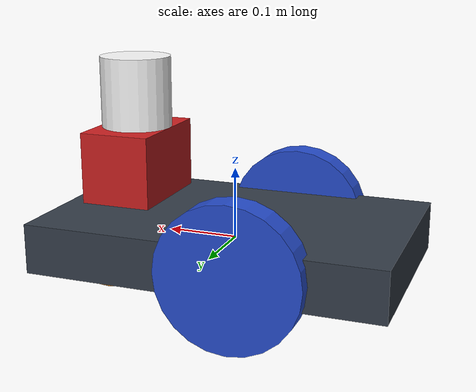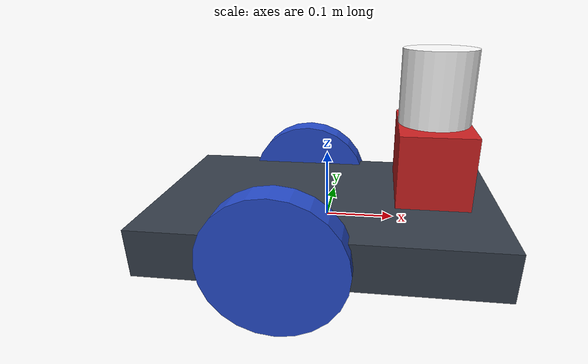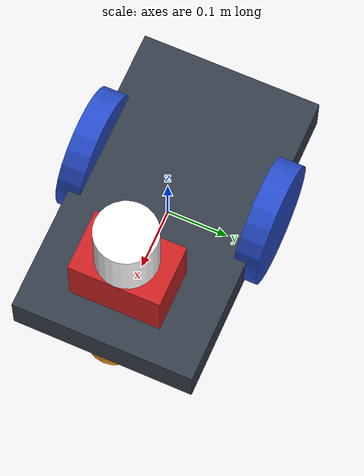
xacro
<?xml version="1.0" ?>

<robot name="my_robot" xmlns:xacro="http://www.ros.org/wiki/xacro">
  <xacro:include filename="$(find diff_description)/urdf/robot.gazebo"/>
  <xacro:include filename="$(find diff_description)/urdf/materials.xacro"/>
  <xacro:include filename="$(find diff_description)/urdf/macro.xacro"/>

  <link name="link_chassis">
    <!-- pose and inertial -->
    <pose>0 0 0.1 0 0 0</pose>
    <inertial>
      <mass value="5"/>
      <origin rpy="0 0 0" xyz="0 0 0.1"/>
      <inertia ixx="0.0395416666667" ixy="0" ixz="0" iyy="0.106208333333" iyz="0" izz="0.106208333333"/>
    </inertial>
    <!-- body -->
    <collision name="collision_chassis">
      <geometry>
        <box size="0.5 0.3 0.07"/>
      </geometry>
    </collision>
    <visual>
      <origin rpy="0 0 0" xyz="0 0 0"/>
      <geometry>
        <box size="0.5 0.3 0.07"/>
      </geometry>
      <material name="blue"/>
    </visual>
    <!-- caster front -->
    <collision name="caster_front_collision">
      <origin rpy=" 0 0 0" xyz="0.35 0 -0.05"/>
      <geometry>
        <sphere radius="0.05"/>
      </geometry>
      <surface>
        <friction>
          <ode>
            <mu>0</mu>
            <mu2>0</mu2>
            <slip1>1.0</slip1>
            <slip2>1.0</slip2>
          </ode>
        </friction>
      </surface>
    </collision>
    <visual name="caster_front_visual">
      <origin rpy=" 0 0 0" xyz="0.2 0 -0.05"/>
      <geometry>
        <sphere radius="0.05"/>
      </geometry>
    </visual>
  </link>

  <xacro:link_wheel name="link_right_wheel" />
  <xacro:joint_wheel name="joint_right_wheel" child="link_right_wheel" origin_xyz="-0.05 -0.15 0"/>

  <xacro:link_wheel name="link_left_wheel" />
  <xacro:joint_wheel name="joint_left_wheel" child="link_left_wheel" origin_xyz="-0.05 0.15 0"/>

  <link name="sensor_laser">
    <inertial>
      <origin xyz="0 0 0" rpy="0 0 0" />
      <mass value="1" />
      <!-- RANDOM INERTIA BELOW -->
      <inertia ixx="0.02" ixy="0" ixz="0" iyy="0.02" iyz="0" izz="0.02"/>
    </inertial>

    <visual>
      <origin xyz="0 0 0" rpy="0 0 0" />
      <geometry>
        <cylinder radius="0.05" length="0.1"/>
      </geometry>
      <material name="white" />
    </visual>

    <collision>
      <origin xyz="0 0 0" rpy="0 0 0"/>
      <geometry>
        <cylinder radius="0.05" length="0.1"/>
      </geometry>
    </collision>
  </link>

  <link name="kinect_sensor">
    <inertial>
      <origin xyz="0 0 0" rpy="0 0 0" />
      <mass value="1" />
      <!-- RANDOM INERTIA BELOW -->
      <inertia ixx="0.02" ixy="0" ixz="0" iyy="0.02" iyz="0" izz="0.02"/>
    </inertial>

    <visual>
      <origin xyz="0 0 0" rpy="0 0 0" />
      <geometry>
        <box size="0.1 0.15 0.1"/>
      </geometry>
      <material name="red" />
    </visual>

    <collision>
      <origin xyz="0 0 0" rpy="0 0 0"/>
      <geometry>
        <box size="0.1 0.15 0.1"/>
      </geometry>
    </collision>

  </link>

  <joint name="joint_sensor_laser" type="fixed">
    <origin xyz="0 0 0.1" rpy="0 0 0"/>
    <parent link="kinect_sensor"/>
    <child link="sensor_laser"/>
  </joint>

  <joint name="joint_sensor_kinect" type="fixed">
    <origin xyz="0.15 0 0.1" rpy="0 0 0"/>
    <parent link="link_chassis"/>
    <child link="kinect_sensor"/>
  </joint>

</robot>

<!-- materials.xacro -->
<robot name="my_robot" xmlns:xacro="http://www.ros.org/wiki/xacro">
    <material name="black">
        <color rgba="0.0 0.0 0.0 1.0"/>
      </material>
      <material name="blue">
        <color rgba="0.203125 0.23828125 0.28515625 1.0"/>
      </material>
      <material name="green">
        <color rgba="0.0 0.8 0.0 1.0"/>
      </material>
      <material name="grey">
        <color rgba="0.2 0.2 0.2 1.0"/>
      </material>
      <material name="orange">
        <color rgba="1.0 0.423529411765 0.0392156862745 1.0"/>
      </material>
      <material name="brown">
        <color rgba="0.870588235294 0.811764705882 0.764705882353 1.0"/>
      </material>
      <material name="red">
        <color rgba="0.80078125 0.12890625 0.1328125 1.0"/>
      </material>
      <material name="white">
        <color rgba="1.0 1.0 1.0 1.0"/>
      </material>

</robot>

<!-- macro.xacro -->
<robot name="my_robot" xmlns:xacro="http://www.ros.org/wiki/xacro">
    <xacro:macro name="link_wheel" params="name">
        <link name="${name}">
            <inertial>
              <mass value="0.2"/>
              <origin rpy="0 1.5707 1.5707" xyz="0 0 0"/>
              <inertia ixx="0.000526666666667" ixy="0" ixz="0" iyy="0.000526666666667" iyz="0" izz="0.001"/>
            </inertial>
            <collision name="${name}_collision">
              <origin rpy="0 1.5707 1.5707" xyz="0 0 0"/>
              <geometry>
                <cylinder length="0.04" radius="0.1"/>
              </geometry>
            </collision>
            <visual name="${name}_visual">
              <origin rpy="0 1.5707 1.5707" xyz="0 0 0"/>
              <geometry>
                <cylinder length="0.04" radius="0.1"/>
              </geometry>
            </visual>
          </link>
    </xacro:macro>
    <xacro:macro name="joint_wheel" params="name child origin_xyz">
        <joint name="${name}" type="continuous">
            <origin rpy="0 0 0" xyz="${origin_xyz}"/>
            <child link="${child}"/>
            <parent link="link_chassis"/>
            <axis rpy="0 0 0" xyz="0 1 0"/>
            <limit effort="10000" velocity="1000"/>
            <joint_properties damping="1.0" friction="1.0"/>
          </joint>
    </xacro:macro>
</robot>
